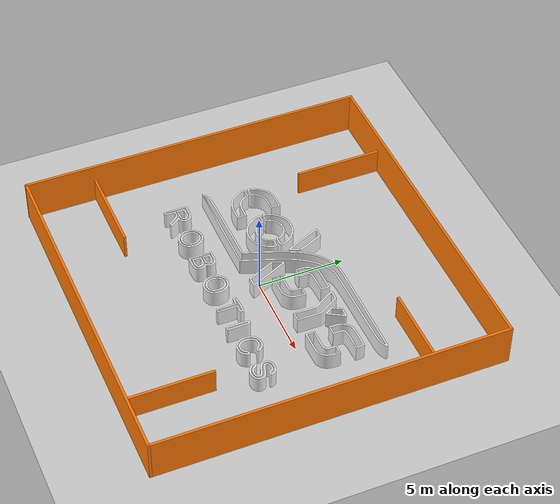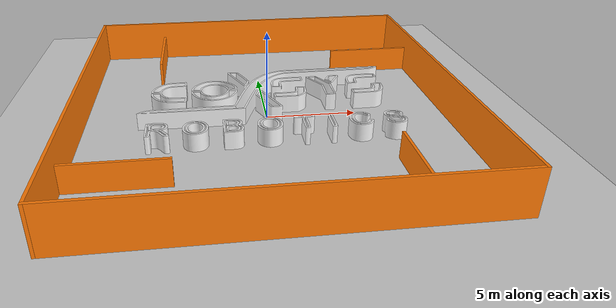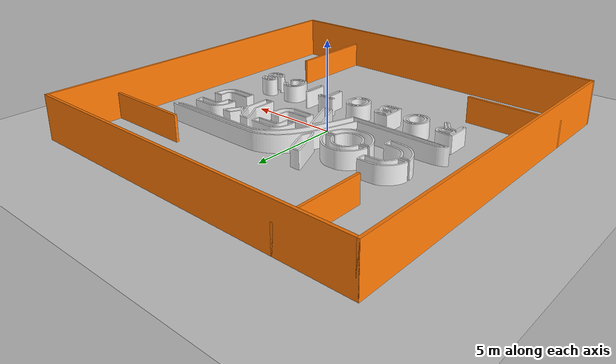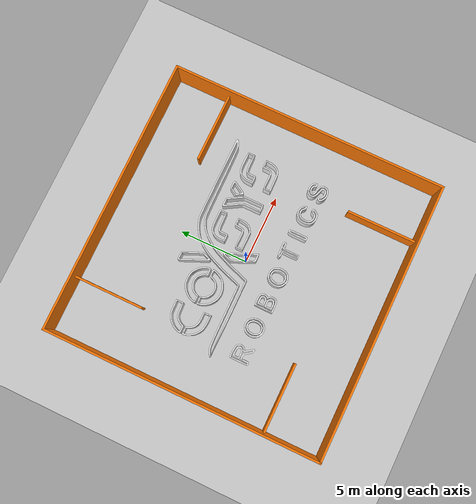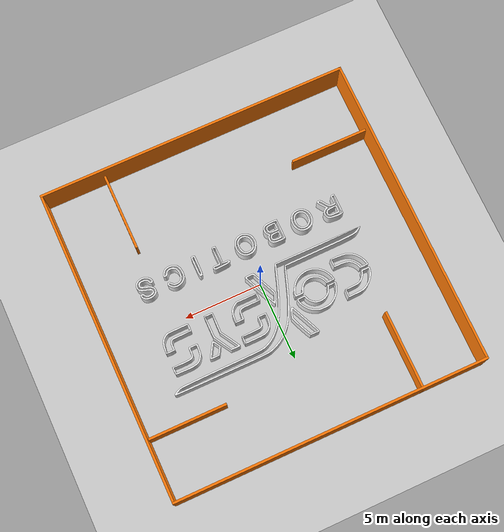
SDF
<sdf version="1.6">
 <world name="default">
  <light name="sun" type="directional">
   <pose>0 0 10 0 -0 0</pose>
   <diffuse>0.8 0.8 0.8 1</diffuse>
   <specular>0.2 0.2 0.2 1</specular>
   <attenuation>
    <range>1000</range>
    <constant>0.9</constant>
    <linear>0.01</linear>
    <quadratic>0.001</quadratic>
   </attenuation>
   <direction>-0.5 0.1 -0.9</direction>
  </light>
  <model name="ground_plane">
   <static>1</static>
   <link name="link">
    <collision name="collision">
     <geometry><plane><normal>0 0 1</normal><size>100 100</size></plane></geometry>
     <surface>
      <contact><collide_bitmask>65535</collide_bitmask></contact>
      <friction><ode><mu>100</mu><mu2>50</mu2></ode></friction>
     </surface>
    </collision>
    <visual name="visual">
     <cast_shadows>0</cast_shadows>
     <geometry><plane><normal>0 0 1</normal><size>100 100</size></plane></geometry>
     <material>
      <script><uri>file://media/materials/scripts/gazebo.material</uri><name>Gazebo/Grey</name></script>
     </material>
    </visual>
   </link>
  </model>
  <gravity>0 0 -9.8</gravity>
  <magnetic_field>6e-06 2.3e-05 -4.2e-05</magnetic_field>
  <atmosphere type="adiabatic"/>
  <physics name="default_physics" default="0" type="ode">
   <max_step_size>0.001</max_step_size>
   <real_time_factor>1</real_time_factor>
   <real_time_update_rate>1000</real_time_update_rate>
  </physics>
  <scene><ambient>0.4 0.4 0.4 1</ambient><background>0.7 0.7 0.7 1</background><shadows>1</shadows></scene>
  <spherical_coordinates>
   <surface_model>EARTH_WGS84</surface_model>
   <latitude_deg>0</latitude_deg>
   <longitude_deg>0</longitude_deg>
   <elevation>0</elevation>
   <heading_deg>0</heading_deg>
  </spherical_coordinates>
  <model name="coxsys_logo">
   <link name="link_0">
    <inertial>
     <mass>1</mass>
     <inertia>
      <ixx>0.166667</ixx>
      <ixy>0</ixy>
      <ixz>0</ixz>
      <iyy>0.166667</iyy>
      <iyz>0</iyz>
      <izz>0.166667</izz>
     </inertia>
    </inertial>
    <visual name="visual">
     <geometry><mesh><uri>model://coxsys_logo/meshes/coxsys.stl</uri><scale>1 1 1</scale></mesh></geometry>
     <material>
      <lighting>1</lighting>
      <script><uri>file://media/materials/scripts/gazebo.material</uri><name>Gazebo/White</name></script>
      <shader type="vertex"><normal_map>__default__</normal_map></shader>
     </material>
    </visual>
    <collision name="collision">
     <geometry><mesh><uri>model://coxsys_logo/meshes/coxsys.stl</uri><scale>1 1 1</scale></mesh></geometry>
     <surface>
      <friction>
       <ode><mu>1</mu><mu2>1</mu2><fdir1>0 0 0</fdir1><slip1>0</slip1><slip2>0</slip2></ode>
       <torsional>
        <coefficient>1</coefficient>
        <patch_radius>0</patch_radius>
        <surface_radius>0</surface_radius>
        <use_patch_radius>1</use_patch_radius>
        <ode><slip>0</slip></ode>
       </torsional>
      </friction>
      <bounce><restitution_coefficient>0</restitution_coefficient><threshold>1e+06</threshold></bounce>
      <contact>
       <collide_without_contact>0</collide_without_contact>
       <collide_without_contact_bitmask>1</collide_without_contact_bitmask>
       <collide_bitmask>1</collide_bitmask>
       <ode>
        <soft_cfm>0</soft_cfm>
        <soft_erp>0.2</soft_erp>
        <kp>1e+13</kp>
        <kd>1</kd>
        <max_vel>0.01</max_vel>
        <min_depth>0</min_depth>
       </ode>
       <bullet>
        <split_impulse>1</split_impulse>
        <split_impulse_penetration_threshold>-0.01</split_impulse_penetration_threshold>
        <soft_cfm>0</soft_cfm>
        <soft_erp>0.2</soft_erp>
        <kp>1e+13</kp>
        <kd>1</kd>
       </bullet>
      </contact>
     </surface>
    </collision>
   </link>
   <static>1</static>
   <pose>0 0 0.5 0 -0 0</pose>
  </model>
  <model name="test_map_inside_wall">
   <link name="Wall_0">
    <collision name="Wall_0_Collision">
     <geometry><box><size>5.15 0.15 1.5</size></box></geometry>
     <pose>0 0 0.75 0 -0 0</pose>
    </collision>
    <visual name="Wall_0_Visual">
     <pose>0 0 0.75 0 -0 0</pose>
     <geometry><box><size>5.15 0.15 1.5</size></box></geometry>
     <material>
      <script><uri>file://media/materials/scripts/gazebo.material</uri><name>Gazebo/Grey</name></script>
      <ambient>0.996078 0.47451 0.0196078 1</ambient>
     </material>
     <meta><layer>0</layer></meta>
    </visual>
    <pose>-6 7.5 0 0 -0 1.5708</pose>
   </link>
   <link name="Wall_3">
    <collision name="Wall_3_Collision">
     <geometry><box><size>5.15 0.15 1.5</size></box></geometry>
     <pose>0 0 0.75 0 -0 0</pose>
    </collision>
    <visual name="Wall_3_Visual">
     <pose>0 0 0.75 0 -0 0</pose>
     <geometry><box><size>5.15 0.15 1.5</size></box></geometry>
     <material>
      <script><uri>file://media/materials/scripts/gazebo.material</uri><name>Gazebo/Grey</name></script>
      <ambient>0.996078 0.47451 0.0196078 1</ambient>
     </material>
     <meta><layer>0</layer></meta>
    </visual>
    <pose>7.5 6 0 0 -0 0</pose>
   </link>
   <link name="Wall_5">
    <collision name="Wall_5_Collision">
     <geometry><box><size>5.15 0.15 1.5</size></box></geometry>
     <pose>0 0 0.75 0 -0 0</pose>
    </collision>
    <visual name="Wall_5_Visual">
     <pose>0 0 0.75 0 -0 0</pose>
     <geometry><box><size>5.15 0.15 1.5</size></box></geometry>
     <material>
      <script><uri>file://media/materials/scripts/gazebo.material</uri><name>Gazebo/Grey</name></script>
      <ambient>0.996078 0.47451 0.0196078 1</ambient>
     </material>
     <meta><layer>0</layer></meta>
    </visual>
    <pose>6 -7.5 0 0 -0 -1.5708</pose>
   </link>
   <link name="Wall_7">
    <collision name="Wall_7_Collision">
     <geometry><box><size>5.15 0.15 1.5</size></box></geometry>
     <pose>0 0 0.75 0 -0 0</pose>
    </collision>
    <visual name="Wall_7_Visual">
     <pose>0 0 0.75 0 -0 0</pose>
     <geometry><box><size>5.15 0.15 1.5</size></box></geometry>
     <material>
      <script><uri>file://media/materials/scripts/gazebo.material</uri><name>Gazebo/Grey</name></script>
      <ambient>0.996078 0.47451 0.0196078 1</ambient>
     </material>
     <meta><layer>0</layer></meta>
    </visual>
    <pose>-7.5 -6 0 0 -0 3.14159</pose>
   </link>
   <static>1</static>
  </model>
  <model name="test_map_wall">
   <link name="Wall_0">
    <collision name="Wall_0_Collision">
     <geometry><box><size>20.15 0.15 2.5</size></box></geometry>
     <pose>0 0 1.25 0 -0 0</pose>
    </collision>
    <visual name="Wall_0_Visual">
     <pose>0 0 1.25 0 -0 0</pose>
     <geometry><box><size>20.15 0.15 2.5</size></box></geometry>
     <material>
      <script><uri>file://media/materials/scripts/gazebo.material</uri><name>Gazebo/Grey</name></script>
      <ambient>0.996078 0.47451 0.0196078 1</ambient>
     </material>
     <meta><layer>0</layer></meta>
    </visual>
    <pose>-10 0 0 0 -0 1.5708</pose>
   </link>
   <link name="Wall_1">
    <collision name="Wall_1_Collision">
     <geometry><box><size>20.15 0.15 2.5</size></box></geometry>
     <pose>0 0 1.25 0 -0 0</pose>
    </collision>
    <visual name="Wall_1_Visual">
     <pose>0 0 1.25 0 -0 0</pose>
     <geometry><box><size>20.15 0.15 2.5</size></box></geometry>
     <material>
      <script><uri>file://media/materials/scripts/gazebo.material</uri><name>Gazebo/Grey</name></script>
      <ambient>0.996078 0.47451 0.0196078 1</ambient>
     </material>
     <meta><layer>0</layer></meta>
    </visual>
    <pose>0 10 0 0 -0 0</pose>
   </link>
   <link name="Wall_2">
    <collision name="Wall_2_Collision">
     <geometry><box><size>20.15 0.15 2.5</size></box></geometry>
     <pose>0 0 1.25 0 -0 0</pose>
    </collision>
    <visual name="Wall_2_Visual">
     <pose>0 0 1.25 0 -0 0</pose>
     <geometry><box><size>20.15 0.15 2.5</size></box></geometry>
     <material>
      <script><uri>file://media/materials/scripts/gazebo.material</uri><name>Gazebo/Grey</name></script>
      <ambient>0.996078 0.47451 0.0196078 1</ambient>
     </material>
     <meta><layer>0</layer></meta>
    </visual>
    <pose>10 0 0 0 -0 -1.5708</pose>
   </link>
   <link name="Wall_3">
    <collision name="Wall_3_Collision">
     <geometry><box><size>20.15 0.15 2.5</size></box></geometry>
     <pose>0 0 1.25 0 -0 0</pose>
    </collision>
    <visual name="Wall_3_Visual">
     <pose>0 0 1.25 0 -0 0</pose>
     <geometry><box><size>20.15 0.15 2.5</size></box></geometry>
     <material>
      <script><uri>file://media/materials/scripts/gazebo.material</uri><name>Gazebo/Grey</name></script>
      <ambient>0.996078 0.47451 0.0196078 1</ambient>
     </material>
     <meta><layer>0</layer></meta>
    </visual>
    <pose>0 -10 0 0 -0 3.14159</pose>
   </link>
   <static>1</static>
  </model>
 </world>
</sdf>
